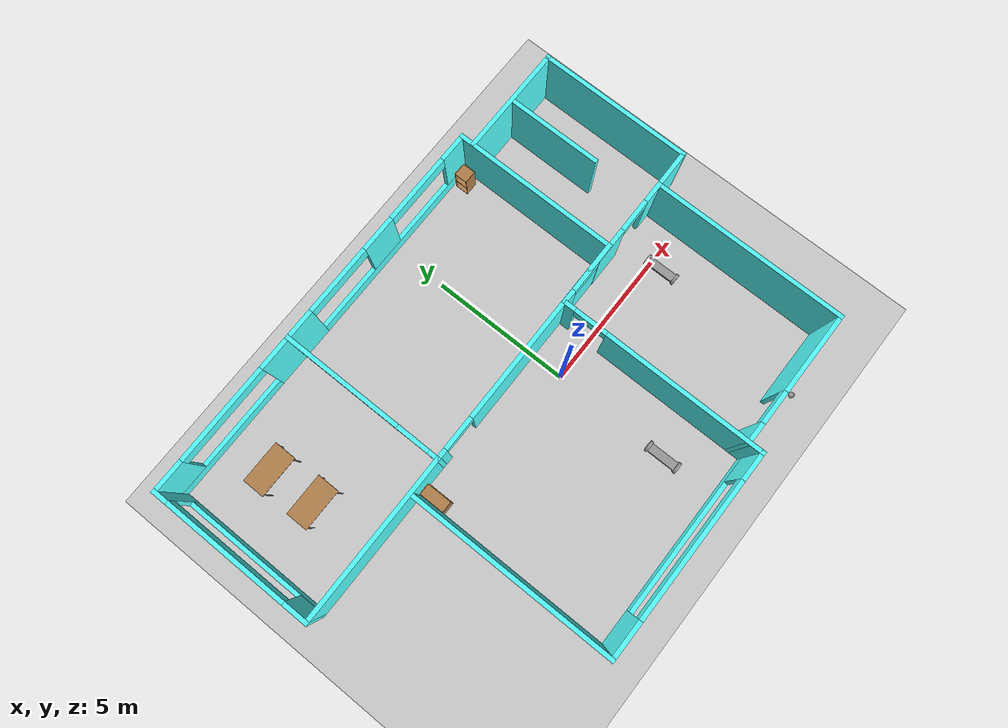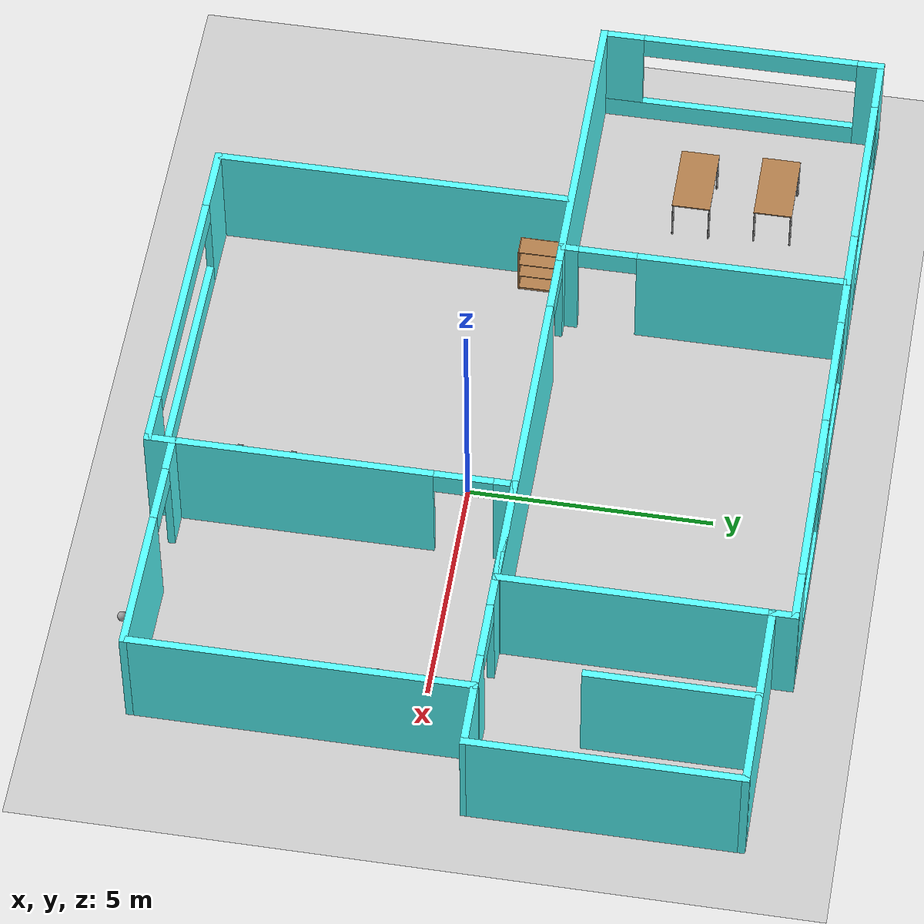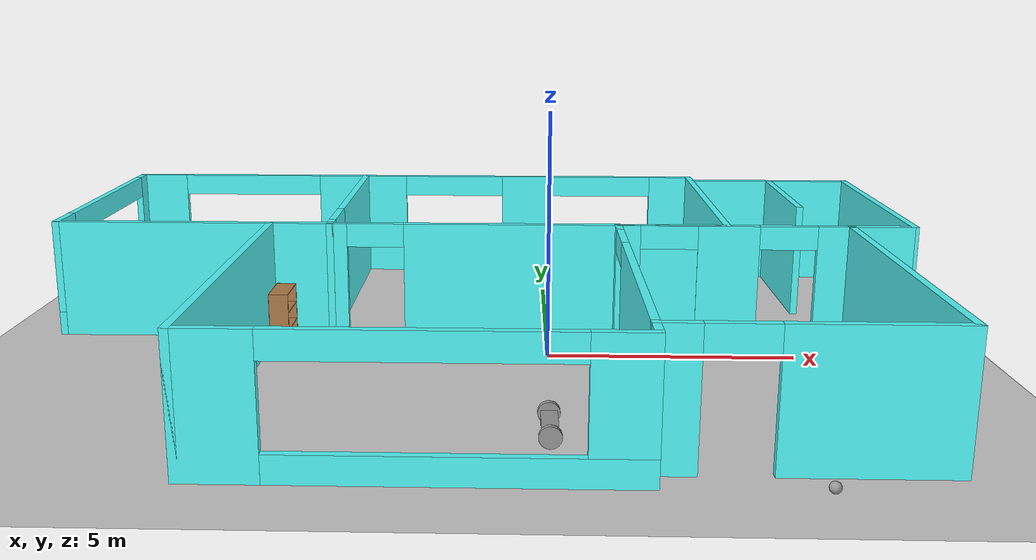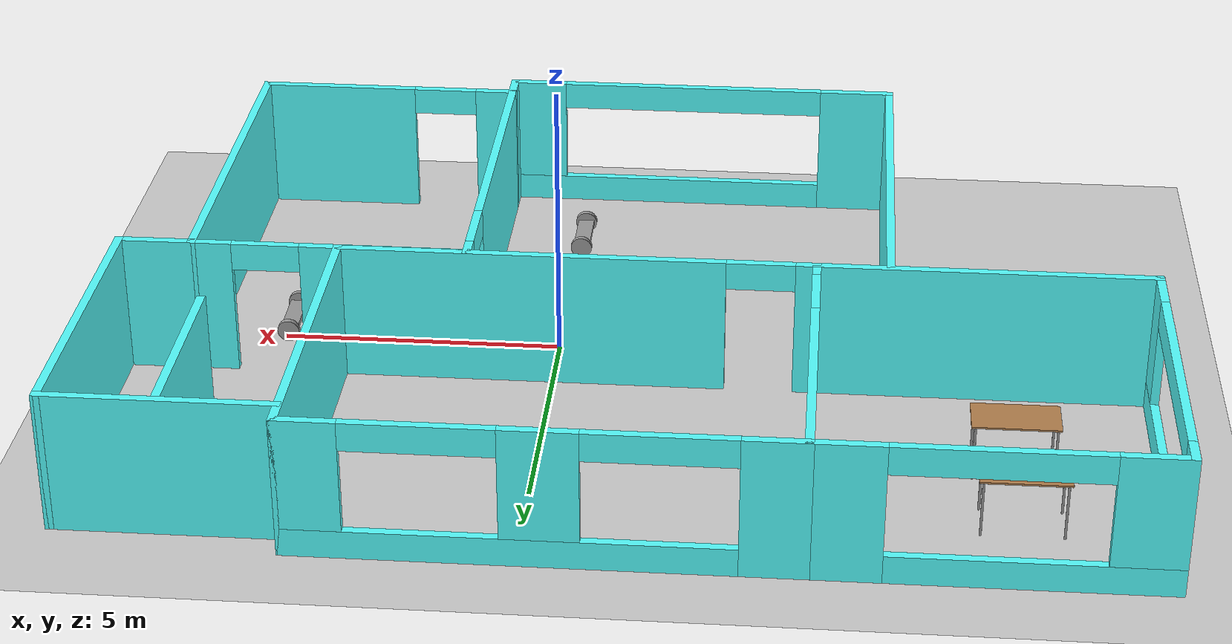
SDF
<sdf version="1.6">
 <world name="default">
  <plugin name="hello" filename="libhello.so"/>
  <light name="sun" type="directional">
   <pose>0 0 10 0 -0 0</pose>
   <diffuse>0.8 0.8 0.8 1</diffuse>
   <specular>0.2 0.2 0.2 1</specular>
   <attenuation>
    <range>1000</range>
    <constant>0.9</constant>
    <linear>0.01</linear>
    <quadratic>0.001</quadratic>
   </attenuation>
   <direction>-0.5 0.1 -0.9</direction>
  </light>
  <model name="ground_plane">
   <static>1</static>
   <link name="link">
    <collision name="collision">
     <geometry><plane><normal>0 0 1</normal><size>100 100</size></plane></geometry>
     <surface>
      <contact><collide_bitmask>65535</collide_bitmask></contact>
      <friction><ode><mu>100</mu><mu2>50</mu2></ode></friction>
     </surface>
    </collision>
    <visual name="visual">
     <cast_shadows>0</cast_shadows>
     <geometry><plane><normal>0 0 1</normal><size>100 100</size></plane></geometry>
     <material>
      <script><uri>file://media/materials/scripts/gazebo.material</uri><name>Gazebo/Grey</name></script>
     </material>
    </visual>
   </link>
  </model>
  <gravity>0 0 -9.8</gravity>
  <magnetic_field>6e-06 2.3e-05 -4.2e-05</magnetic_field>
  <atmosphere type="adiabatic"/>
  <physics name="default_physics" default="0" type="ode">
   <max_step_size>0.001</max_step_size>
   <real_time_factor>1</real_time_factor>
   <real_time_update_rate>1000</real_time_update_rate>
  </physics>
  <scene><ambient>0.4 0.4 0.4 1</ambient><background>0.7 0.7 0.7 1</background><shadows>1</shadows></scene>
  <spherical_coordinates>
   <surface_model>EARTH_WGS84</surface_model>
   <latitude_deg>0</latitude_deg>
   <longitude_deg>0</longitude_deg>
   <elevation>0</elevation>
   <heading_deg>0</heading_deg>
  </spherical_coordinates>
  <model name="robot">
   <link name="link_0">
    <inertial>
     <mass>1</mass>
     <inertia>
      <ixx>0.166667</ixx>
      <ixy>0</ixy>
      <ixz>0</ixz>
      <iyy>0.166667</iyy>
      <iyz>0</iyz>
      <izz>0.166667</izz>
     </inertia>
    </inertial>
    <visual name="visual">
     <geometry><box><size>0.3 1 0.1</size></box></geometry>
     <material>
      <lighting>1</lighting>
      <script><uri>file://media/materials/scripts/gazebo.material</uri><name>Gazebo/Grey</name></script>
      <shader type="pixel"><normal_map>__default__</normal_map></shader>
      <ambient>0.3 0.3 0.3 1</ambient>
      <diffuse>0.7 0.7 0.7 1</diffuse>
      <specular>0.01 0.01 0.01 1</specular>
      <emissive>0 0 0 1</emissive>
     </material>
    </visual>
    <collision name="collision">
     <geometry><box><size>0.3 1 0.1</size></box></geometry>
     <surface>
      <friction>
       <ode><mu>1</mu><mu2>1</mu2><fdir1>0 0 0</fdir1><slip1>0</slip1><slip2>0</slip2></ode>
       <torsional>
        <coefficient>1</coefficient>
        <patch_radius>0</patch_radius>
        <surface_radius>0</surface_radius>
        <use_patch_radius>1</use_patch_radius>
        <ode><slip>0</slip></ode>
       </torsional>
      </friction>
      <bounce><restitution_coefficient>0</restitution_coefficient><threshold>1e+06</threshold></bounce>
      <contact>
       <collide_without_contact>0</collide_without_contact>
       <collide_without_contact_bitmask>1</collide_without_contact_bitmask>
       <collide_bitmask>1</collide_bitmask>
       <ode>
        <soft_cfm>0</soft_cfm>
        <soft_erp>0.2</soft_erp>
        <kp>1e+13</kp>
        <kd>1</kd>
        <max_vel>0.01</max_vel>
        <min_depth>0</min_depth>
       </ode>
       <bullet>
        <split_impulse>1</split_impulse>
        <split_impulse_penetration_threshold>-0.01</split_impulse_penetration_threshold>
        <soft_cfm>0</soft_cfm>
        <soft_erp>0.2</soft_erp>
        <kp>1e+13</kp>
        <kd>1</kd>
       </bullet>
      </contact>
     </surface>
    </collision>
   </link>
   <link name="link_1">
    <pose>0 -0.550019 0 1.5707 -0 0</pose>
    <inertial>
     <mass>1</mass>
     <inertia><ixx>0.145833</ixx><ixy>0</ixy><ixz>0</ixz><iyy>0.145833</iyy><iyz>0</iyz><izz>0.125</izz></inertia>
    </inertial>
    <visual name="visual">
     <geometry><cylinder><radius>0.2</radius><length>0.1</length></cylinder></geometry>
     <material>
      <lighting>1</lighting>
      <script><uri>file://media/materials/scripts/gazebo.material</uri><name>Gazebo/Grey</name></script>
      <shader type="pixel"><normal_map>__default__</normal_map></shader>
      <ambient>0.3 0.3 0.3 1</ambient>
      <diffuse>0.7 0.7 0.7 1</diffuse>
      <specular>0.01 0.01 0.01 1</specular>
      <emissive>0 0 0 1</emissive>
     </material>
    </visual>
    <collision name="collision">
     <geometry><cylinder><radius>0.2</radius><length>0.1</length></cylinder></geometry>
     <surface>
      <friction>
       <ode><mu>1</mu><mu2>1</mu2><fdir1>0 0 0</fdir1><slip1>0</slip1><slip2>0</slip2></ode>
       <torsional>
        <coefficient>1</coefficient>
        <patch_radius>0</patch_radius>
        <surface_radius>0</surface_radius>
        <use_patch_radius>1</use_patch_radius>
        <ode><slip>0</slip></ode>
       </torsional>
      </friction>
      <bounce><restitution_coefficient>0</restitution_coefficient><threshold>1e+06</threshold></bounce>
      <contact>
       <collide_without_contact>0</collide_without_contact>
       <collide_without_contact_bitmask>1</collide_without_contact_bitmask>
       <collide_bitmask>1</collide_bitmask>
       <ode>
        <soft_cfm>0</soft_cfm>
        <soft_erp>0.2</soft_erp>
        <kp>1e+13</kp>
        <kd>1</kd>
        <max_vel>0.01</max_vel>
        <min_depth>0</min_depth>
       </ode>
       <bullet>
        <split_impulse>1</split_impulse>
        <split_impulse_penetration_threshold>-0.01</split_impulse_penetration_threshold>
        <soft_cfm>0</soft_cfm>
        <soft_erp>0.2</soft_erp>
        <kp>1e+13</kp>
        <kd>1</kd>
       </bullet>
      </contact>
     </surface>
    </collision>
   </link>
   <link name="link_1_clone">
    <pose>0 0.550019 0 1.5707 -0 0</pose>
    <inertial>
     <mass>1</mass>
     <inertia><ixx>0.145833</ixx><ixy>0</ixy><ixz>0</ixz><iyy>0.145833</iyy><iyz>0</iyz><izz>0.125</izz></inertia>
    </inertial>
    <visual name="visual">
     <geometry><cylinder><radius>0.2</radius><length>0.1</length></cylinder></geometry>
     <material>
      <lighting>1</lighting>
      <script><uri>file://media/materials/scripts/gazebo.material</uri><name>Gazebo/Grey</name></script>
      <shader type="pixel"><normal_map>__default__</normal_map></shader>
      <ambient>0.3 0.3 0.3 1</ambient>
      <diffuse>0.7 0.7 0.7 1</diffuse>
      <specular>0.01 0.01 0.01 1</specular>
      <emissive>0 0 0 1</emissive>
     </material>
    </visual>
    <collision name="collision">
     <geometry><cylinder><radius>0.2</radius><length>0.1</length></cylinder></geometry>
     <surface>
      <friction>
       <ode><mu>1</mu><mu2>1</mu2><fdir1>0 0 0</fdir1><slip1>0</slip1><slip2>0</slip2></ode>
       <torsional>
        <coefficient>1</coefficient>
        <patch_radius>0</patch_radius>
        <surface_radius>0</surface_radius>
        <use_patch_radius>1</use_patch_radius>
        <ode><slip>0</slip></ode>
       </torsional>
      </friction>
      <bounce><restitution_coefficient>0</restitution_coefficient><threshold>1e+06</threshold></bounce>
      <contact>
       <collide_without_contact>0</collide_without_contact>
       <collide_without_contact_bitmask>1</collide_without_contact_bitmask>
       <collide_bitmask>1</collide_bitmask>
       <ode>
        <soft_cfm>0</soft_cfm>
        <soft_erp>0.2</soft_erp>
        <kp>1e+13</kp>
        <kd>1</kd>
        <max_vel>0.01</max_vel>
        <min_depth>0</min_depth>
       </ode>
       <bullet>
        <split_impulse>1</split_impulse>
        <split_impulse_penetration_threshold>-0.01</split_impulse_penetration_threshold>
        <soft_cfm>0</soft_cfm>
        <soft_erp>0.2</soft_erp>
        <kp>1e+13</kp>
        <kd>1</kd>
       </bullet>
      </contact>
     </surface>
    </collision>
   </link>
   <joint name="link_0_JOINT_0" type="revolute">
    <parent>link_0</parent>
    <child>link_1</child>
    <axis>
     <xyz>0 0 1</xyz>
     <use_parent_model_frame>0</use_parent_model_frame>
     <limit>
      <lower>-1.79769e+308</lower>
      <upper>1.79769e+308</upper>
      <effort>-1</effort>
      <velocity>-1</velocity>
     </limit>
     <dynamics>
      <spring_reference>0</spring_reference>
      <spring_stiffness>0</spring_stiffness>
      <damping>0</damping>
     </dynamics>
    </axis>
    <physics>
     <ode><limit><cfm>0</cfm><erp>0.2</erp></limit><suspension><cfm>0</cfm><erp>0.2</erp></suspension></ode>
    </physics>
   </joint>
   <joint name="link_0_JOINT_1" type="revolute">
    <parent>link_0</parent>
    <child>link_1_clone</child>
    <axis>
     <xyz>0 0 1</xyz>
     <use_parent_model_frame>0</use_parent_model_frame>
     <limit>
      <lower>-1.79769e+308</lower>
      <upper>1.79769e+308</upper>
      <effort>-1</effort>
      <velocity>-1</velocity>
     </limit>
     <dynamics>
      <spring_reference>0</spring_reference>
      <spring_stiffness>0</spring_stiffness>
      <damping>0</damping>
     </dynamics>
    </axis>
    <physics>
     <ode><limit><cfm>0</cfm><erp>0.2</erp></limit><suspension><cfm>0</cfm><erp>0.2</erp></suspension></ode>
    </physics>
   </joint>
   <static>0</static>
   <pose>-0.059484 -4.16232 0.200005 0 -0 0</pose>
  </model>
  <model name="building">
   <pose>-1.41235 0.43218 0 0 -0 0</pose>
   <link name="Wall_1">
    <pose>-9.03865 3.68146 0 0 0 -1.5708</pose>
    <visual name="Wall_1_Visual_0">
     <pose>-2.71577 0 1.25 0 -0 0</pose>
     <geometry><box><size>0.568462 0.15 2.5</size></box></geometry>
     <material>
      <script><uri>file://media/materials/scripts/gazebo.material</uri><name>Gazebo/Grey</name></script>
      <ambient>0.333333 1 1 1</ambient>
     </material>
     <meta><layer>0</layer></meta>
    </visual>
    <collision name="Wall_1_Collision_0">
     <geometry><box><size>0.568462 0.15 2.5</size></box></geometry>
     <pose>-2.71577 0 1.25 0 -0 0</pose>
    </collision>
    <visual name="Wall_1_Visual_1">
     <pose>0.284231 0 0.25 0 -0 0</pose>
     <geometry><box><size>5.43154 0.15 0.5</size></box></geometry>
     <material>
      <script><uri>file://media/materials/scripts/gazebo.material</uri><name>Gazebo/Grey</name></script>
      <ambient>0.333333 1 1 1</ambient>
     </material>
     <meta><layer>0</layer></meta>
    </visual>
    <collision name="Wall_1_Collision_1">
     <geometry><box><size>5.43154 0.15 0.5</size></box></geometry>
     <pose>0.284231 0 0.25 0 -0 0</pose>
    </collision>
    <visual name="Wall_1_Visual_2">
     <pose>2.53423 0 1.5 0 -0 0</pose>
     <geometry><box><size>0.931538 0.15 2</size></box></geometry>
     <material>
      <script><uri>file://media/materials/scripts/gazebo.material</uri><name>Gazebo/Grey</name></script>
      <ambient>0.333333 1 1 1</ambient>
     </material>
     <meta><layer>0</layer></meta>
    </visual>
    <collision name="Wall_1_Collision_2">
     <geometry><box><size>0.931538 0.15 2</size></box></geometry>
     <pose>2.53423 0 1.5 0 -0 0</pose>
    </collision>
    <visual name="Wall_1_Visual_3">
     <pose>-0.181538 0 2.25 0 -0 0</pose>
     <geometry><box><size>4.5 0.15 0.5</size></box></geometry>
     <material>
      <script><uri>file://media/materials/scripts/gazebo.material</uri><name>Gazebo/Grey</name></script>
      <ambient>0.333333 1 1 1</ambient>
     </material>
     <meta><layer>0</layer></meta>
    </visual>
    <collision name="Wall_1_Collision_3">
     <geometry><box><size>4.5 0.15 0.5</size></box></geometry>
     <pose>-0.181538 0 2.25 0 -0 0</pose>
    </collision>
   </link>
   <link name="Wall_12">
    <collision name="Wall_12_Collision">
     <geometry><box><size>7.5 0.15 2.5</size></box></geometry>
     <pose>0 0 1.25 0 -0 0</pose>
    </collision>
    <visual name="Wall_12_Visual">
     <pose>0 0 1.25 0 -0 0</pose>
     <geometry><box><size>7.5 0.15 2.5</size></box></geometry>
     <material>
      <script><uri>file://media/materials/scripts/gazebo.material</uri><name>Gazebo/Grey</name></script>
      <ambient>0.333333 1 1 1</ambient>
     </material>
     <meta><layer>0</layer></meta>
    </visual>
    <pose>-4.45822 -2.93146 0 0 0 -1.5708</pose>
   </link>
   <link name="Wall_14">
    <pose>-0.783219 -6.60646 0 0 -0 0</pose>
    <visual name="Wall_14_Visual_0">
     <pose>-3.04444 0 1.25 0 -0 0</pose>
     <geometry><box><size>1.41111 0.15 2.5</size></box></geometry>
     <material>
      <script><uri>file://media/materials/scripts/gazebo.material</uri><name>Gazebo/Grey</name></script>
      <ambient>0.333333 1 1 1</ambient>
     </material>
     <meta><layer>0</layer></meta>
    </visual>
    <collision name="Wall_14_Collision_0">
     <geometry><box><size>1.41111 0.15 2.5</size></box></geometry>
     <pose>-3.04444 0 1.25 0 -0 0</pose>
    </collision>
    <visual name="Wall_14_Visual_1">
     <pose>0.705557 0 0.25 0 -0 0</pose>
     <geometry><box><size>6.08889 0.15 0.5</size></box></geometry>
     <material>
      <script><uri>file://media/materials/scripts/gazebo.material</uri><name>Gazebo/Grey</name></script>
      <ambient>0.333333 1 1 1</ambient>
     </material>
     <meta><layer>0</layer></meta>
    </visual>
    <collision name="Wall_14_Collision_1">
     <geometry><box><size>6.08889 0.15 0.5</size></box></geometry>
     <pose>0.705557 0 0.25 0 -0 0</pose>
    </collision>
    <visual name="Wall_14_Visual_2">
     <pose>3.20556 0 1.5 0 -0 0</pose>
     <geometry><box><size>1.08889 0.15 2</size></box></geometry>
     <material>
      <script><uri>file://media/materials/scripts/gazebo.material</uri><name>Gazebo/Grey</name></script>
      <ambient>0.333333 1 1 1</ambient>
     </material>
     <meta><layer>0</layer></meta>
    </visual>
    <collision name="Wall_14_Collision_2">
     <geometry><box><size>1.08889 0.15 2</size></box></geometry>
     <pose>3.20556 0 1.5 0 -0 0</pose>
    </collision>
    <visual name="Wall_14_Visual_3">
     <pose>0.161115 0 2.25 0 -0 0</pose>
     <geometry><box><size>5 0.15 0.5</size></box></geometry>
     <material>
      <script><uri>file://media/materials/scripts/gazebo.material</uri><name>Gazebo/Grey</name></script>
      <ambient>0.333333 1 1 1</ambient>
     </material>
     <meta><layer>0</layer></meta>
    </visual>
    <collision name="Wall_14_Collision_3">
     <geometry><box><size>5 0.15 0.5</size></box></geometry>
     <pose>0.161115 0 2.25 0 -0 0</pose>
    </collision>
   </link>
   <link name="Wall_15">
    <pose>2.89178 -2.93146 0 0 -0 1.5708</pose>
    <visual name="Wall_15_Visual_0">
     <pose>-0.841152 0 1.25 0 -0 0</pose>
     <geometry><box><size>5.81769 0.15 2.5</size></box></geometry>
     <material>
      <script><uri>file://media/materials/scripts/gazebo.material</uri><name>Gazebo/Grey</name></script>
      <ambient>0.333333 1 1 1</ambient>
     </material>
     <meta><layer>0</layer></meta>
    </visual>
    <collision name="Wall_15_Collision_0">
     <geometry><box><size>5.81769 0.15 2.5</size></box></geometry>
     <pose>-0.841152 0 1.25 0 -0 0</pose>
    </collision>
    <visual name="Wall_15_Visual_1">
     <pose>3.50885 0 1.25 0 -0 0</pose>
     <geometry><box><size>0.482305 0.15 2.5</size></box></geometry>
     <material>
      <script><uri>file://media/materials/scripts/gazebo.material</uri><name>Gazebo/Grey</name></script>
      <ambient>0.333333 1 1 1</ambient>
     </material>
     <meta><layer>0</layer></meta>
    </visual>
    <collision name="Wall_15_Collision_1">
     <geometry><box><size>0.482305 0.15 2.5</size></box></geometry>
     <pose>3.50885 0 1.25 0 -0 0</pose>
    </collision>
    <visual name="Wall_15_Visual_2">
     <pose>2.6677 0 2.25 0 -0 0</pose>
     <geometry><box><size>1.2 0.15 0.5</size></box></geometry>
     <material>
      <script><uri>file://media/materials/scripts/gazebo.material</uri><name>Gazebo/Grey</name></script>
      <ambient>0.333333 1 1 1</ambient>
     </material>
     <meta><layer>0</layer></meta>
    </visual>
    <collision name="Wall_15_Collision_2">
     <geometry><box><size>1.2 0.15 0.5</size></box></geometry>
     <pose>2.6677 0 2.25 0 -0 0</pose>
    </collision>
   </link>
   <link name="Wall_17">
    <pose>5.31678 0.743537 0 0 -0 0</pose>
    <visual name="Wall_17_Visual_0">
     <pose>-2.23135 0 1.25 0 -0 0</pose>
     <geometry><box><size>0.537309 0.15 2.5</size></box></geometry>
     <material>
      <script><uri>file://media/materials/scripts/gazebo.material</uri><name>Gazebo/Grey</name></script>
      <ambient>0.333333 1 1 1</ambient>
     </material>
     <meta><layer>0</layer></meta>
    </visual>
    <collision name="Wall_17_Collision_0">
     <geometry><box><size>0.537309 0.15 2.5</size></box></geometry>
     <pose>-2.23135 0 1.25 0 -0 0</pose>
    </collision>
    <visual name="Wall_17_Visual_1">
     <pose>-0.120616 0 1.25 0 -0 0</pose>
     <geometry><box><size>1.28415 0.15 2.5</size></box></geometry>
     <material>
      <script><uri>file://media/materials/scripts/gazebo.material</uri><name>Gazebo/Grey</name></script>
      <ambient>0.333333 1 1 1</ambient>
     </material>
     <meta><layer>0</layer></meta>
    </visual>
    <collision name="Wall_17_Collision_1">
     <geometry><box><size>1.28415 0.15 2.5</size></box></geometry>
     <pose>-0.120616 0 1.25 0 -0 0</pose>
    </collision>
    <visual name="Wall_17_Visual_2">
     <pose>2.11073 0 1.25 0 -0 0</pose>
     <geometry><box><size>0.778542 0.15 2.5</size></box></geometry>
     <material>
      <script><uri>file://media/materials/scripts/gazebo.material</uri><name>Gazebo/Grey</name></script>
      <ambient>0.333333 1 1 1</ambient>
     </material>
     <meta><layer>0</layer></meta>
    </visual>
    <collision name="Wall_17_Collision_2">
     <geometry><box><size>0.778542 0.15 2.5</size></box></geometry>
     <pose>2.11073 0 1.25 0 -0 0</pose>
    </collision>
    <visual name="Wall_17_Visual_3">
     <pose>-1.36269 0 2.25 0 -0 0</pose>
     <geometry><box><size>1.2 0.15 0.5</size></box></geometry>
     <material>
      <script><uri>file://media/materials/scripts/gazebo.material</uri><name>Gazebo/Grey</name></script>
      <ambient>0.333333 1 1 1</ambient>
     </material>
     <meta><layer>0</layer></meta>
    </visual>
    <collision name="Wall_17_Collision_3">
     <geometry><box><size>1.2 0.15 0.5</size></box></geometry>
     <pose>-1.36269 0 2.25 0 -0 0</pose>
    </collision>
    <visual name="Wall_17_Visual_4">
     <pose>1.12146 0 2.25 0 -0 0</pose>
     <geometry><box><size>1.2 0.15 0.5</size></box></geometry>
     <material>
      <script><uri>file://media/materials/scripts/gazebo.material</uri><name>Gazebo/Grey</name></script>
      <ambient>0.333333 1 1 1</ambient>
     </material>
     <meta><layer>0</layer></meta>
    </visual>
    <collision name="Wall_17_Collision_4">
     <geometry><box><size>1.2 0.15 0.5</size></box></geometry>
     <pose>1.12146 0 2.25 0 -0 0</pose>
    </collision>
   </link>
   <link name="Wall_18">
    <collision name="Wall_18_Collision">
     <geometry><box><size>7 0.15 2.5</size></box></geometry>
     <pose>0 0 1.25 0 -0 0</pose>
    </collision>
    <visual name="Wall_18_Visual">
     <pose>0 0 1.25 0 -0 0</pose>
     <geometry><box><size>7 0.15 2.5</size></box></geometry>
     <material>
      <script><uri>file://media/materials/scripts/gazebo.material</uri><name>Gazebo/Grey</name></script>
      <ambient>0.333333 1 1 1</ambient>
     </material>
     <meta><layer>0</layer></meta>
    </visual>
    <pose>7.74178 -2.68146 0 0 0 -1.5708</pose>
   </link>
   <link name="Wall_19">
    <pose>5.31678 -6.10646 0 0 -0 3.14159</pose>
    <visual name="Wall_19_Visual_0">
     <pose>-0.997186 0 1.25 0 -0 0</pose>
     <geometry><box><size>3.00563 0.15 2.5</size></box></geometry>
     <material>
      <script><uri>file://media/materials/scripts/gazebo.material</uri><name>Gazebo/Grey</name></script>
      <ambient>0.333333 1 1 1</ambient>
     </material>
     <meta><layer>0</layer></meta>
    </visual>
    <collision name="Wall_19_Collision_0">
     <geometry><box><size>3.00563 0.15 2.5</size></box></geometry>
     <pose>-0.997186 0 1.25 0 -0 0</pose>
    </collision>
    <visual name="Wall_19_Visual_1">
     <pose>2.10281 0 1.25 0 -0 0</pose>
     <geometry><box><size>0.794371 0.15 2.5</size></box></geometry>
     <material>
      <script><uri>file://media/materials/scripts/gazebo.material</uri><name>Gazebo/Grey</name></script>
      <ambient>0.333333 1 1 1</ambient>
     </material>
     <meta><layer>0</layer></meta>
    </visual>
    <collision name="Wall_19_Collision_1">
     <geometry><box><size>0.794371 0.15 2.5</size></box></geometry>
     <pose>2.10281 0 1.25 0 -0 0</pose>
    </collision>
    <visual name="Wall_19_Visual_2">
     <pose>1.10563 0 2.25 0 -0 0</pose>
     <geometry><box><size>1.2 0.15 0.5</size></box></geometry>
     <material>
      <script><uri>file://media/materials/scripts/gazebo.material</uri><name>Gazebo/Grey</name></script>
      <ambient>0.333333 1 1 1</ambient>
     </material>
     <meta><layer>0</layer></meta>
    </visual>
    <collision name="Wall_19_Collision_2">
     <geometry><box><size>1.2 0.15 0.5</size></box></geometry>
     <pose>1.10563 0 2.25 0 -0 0</pose>
    </collision>
   </link>
   <link name="Wall_2">
    <collision name="Wall_2_Collision">
     <geometry><box><size>6 0.15 2.5</size></box></geometry>
     <pose>0 0 1.25 0 -0 0</pose>
    </collision>
    <visual name="Wall_2_Visual">
     <pose>0 0 1.25 0 -0 0</pose>
     <geometry><box><size>6 0.15 2.5</size></box></geometry>
     <material>
      <script><uri>file://media/materials/scripts/gazebo.material</uri><name>Gazebo/Grey</name></script>
      <ambient>0.333333 1 1 1</ambient>
     </material>
     <meta><layer>0</layer></meta>
    </visual>
    <pose>-6.11365 0.756463 0 0 -0 0</pose>
   </link>
   <link name="Wall_3">
    <pose>-3.18865 3.68146 0 0 -0 1.5708</pose>
    <visual name="Wall_3_Visual_0">
     <pose>-2.78821 0 1.25 0 -0 0</pose>
     <geometry><box><size>0.423576 0.15 2.5</size></box></geometry>
     <material>
      <script><uri>file://media/materials/scripts/gazebo.material</uri><name>Gazebo/Grey</name></script>
      <ambient>0.333333 1 1 1</ambient>
     </material>
     <meta><layer>0</layer></meta>
    </visual>
    <collision name="Wall_3_Collision_0">
     <geometry><box><size>0.423576 0.15 2.5</size></box></geometry>
     <pose>-2.78821 0 1.25 0 -0 0</pose>
    </collision>
    <visual name="Wall_3_Visual_1">
     <pose>0.811788 0 1.25 0 -0 0</pose>
     <geometry><box><size>4.37642 0.15 2.5</size></box></geometry>
     <material>
      <script><uri>file://media/materials/scripts/gazebo.material</uri><name>Gazebo/Grey</name></script>
      <ambient>0.333333 1 1 1</ambient>
     </material>
     <meta><layer>0</layer></meta>
    </visual>
    <collision name="Wall_3_Collision_1">
     <geometry><box><size>4.37642 0.15 2.5</size></box></geometry>
     <pose>0.811788 0 1.25 0 -0 0</pose>
    </collision>
    <visual name="Wall_3_Visual_2">
     <pose>-1.97642 0 2.25 0 -0 0</pose>
     <geometry><box><size>1.2 0.15 0.5</size></box></geometry>
     <material>
      <script><uri>file://media/materials/scripts/gazebo.material</uri><name>Gazebo/Grey</name></script>
      <ambient>0.333333 1 1 1</ambient>
     </material>
     <meta><layer>0</layer></meta>
    </visual>
    <collision name="Wall_3_Collision_2">
     <geometry><box><size>1.2 0.15 0.5</size></box></geometry>
     <pose>-1.97642 0 2.25 0 -0 0</pose>
    </collision>
   </link>
   <link name="Wall_36">
    <collision name="Wall_36_Collision">
     <geometry><box><size>4 0.15 2.5</size></box></geometry>
     <pose>0 0 1.25 0 -0 0</pose>
    </collision>
    <visual name="Wall_36_Visual">
     <pose>0 0 1.25 0 -0 0</pose>
     <geometry><box><size>4 0.15 2.5</size></box></geometry>
     <material>
      <script><uri>file://media/materials/scripts/gazebo.material</uri><name>Gazebo/Grey</name></script>
      <ambient>0.333333 1 1 1</ambient>
     </material>
     <meta><layer>0</layer></meta>
    </visual>
    <pose>7.11291 6.15942 0 0 -0 6.1e-05</pose>
   </link>
   <link name="Wall_37">
    <collision name="Wall_37_Collision">
     <geometry><box><size>5.556 0.15 2.5</size></box></geometry>
     <pose>0 0 1.25 0 -0 0</pose>
    </collision>
    <visual name="Wall_37_Visual">
     <pose>0 0 1.25 0 -0 0</pose>
     <geometry><box><size>5.556 0.15 2.5</size></box></geometry>
     <material>
      <script><uri>file://media/materials/scripts/gazebo.material</uri><name>Gazebo/Grey</name></script>
      <ambient>0.333333 1 1 1</ambient>
     </material>
     <meta><layer>0</layer></meta>
    </visual>
    <pose>9.03778 3.45654 0 0 0 -1.5708</pose>
   </link>
   <link name="Wall_38">
    <collision name="Wall_38_Collision">
     <geometry><box><size>1.44662 0.15 2.5</size></box></geometry>
     <pose>0 0 1.25 0 -0 0</pose>
    </collision>
    <visual name="Wall_38_Visual">
     <pose>0 0 1.25 0 -0 0</pose>
     <geometry><box><size>1.44662 0.15 2.5</size></box></geometry>
     <material>
      <script><uri>file://media/materials/scripts/gazebo.material</uri><name>Gazebo/Grey</name></script>
      <ambient>0.333333 1 1 1</ambient>
     </material>
     <meta><layer>0</layer></meta>
    </visual>
    <pose>8.38978 0.748538 0 0 0 -3.13388</pose>
   </link>
   <link name="Wall_4">
    <pose>-6.11365 6.60646 0 0 -0 3.14159</pose>
    <visual name="Wall_4_Visual_0">
     <pose>-2.35852 0 1.25 0 -0 0</pose>
     <geometry><box><size>1.28296 0.15 2.5</size></box></geometry>
     <material>
      <script><uri>file://media/materials/scripts/gazebo.material</uri><name>Gazebo/Grey</name></script>
      <ambient>0.333333 1 1 1</ambient>
     </material>
     <meta><layer>0</layer></meta>
    </visual>
    <collision name="Wall_4_Collision_0">
     <geometry><box><size>1.28296 0.15 2.5</size></box></geometry>
     <pose>-2.35852 0 1.25 0 -0 0</pose>
    </collision>
    <visual name="Wall_4_Visual_1">
     <pose>0.641479 0 0.25 0 -0 0</pose>
     <geometry><box><size>4.71704 0.15 0.5</size></box></geometry>
     <material>
      <script><uri>file://media/materials/scripts/gazebo.material</uri><name>Gazebo/Grey</name></script>
      <ambient>0.333333 1 1 1</ambient>
     </material>
     <meta><layer>0</layer></meta>
    </visual>
    <collision name="Wall_4_Collision_1">
     <geometry><box><size>4.71704 0.15 0.5</size></box></geometry>
     <pose>0.641479 0 0.25 0 -0 0</pose>
    </collision>
    <visual name="Wall_4_Visual_2">
     <pose>2.39148 0 1.5 0 -0 0</pose>
     <geometry><box><size>1.21704 0.15 2</size></box></geometry>
     <material>
      <script><uri>file://media/materials/scripts/gazebo.material</uri><name>Gazebo/Grey</name></script>
      <ambient>0.333333 1 1 1</ambient>
     </material>
     <meta><layer>0</layer></meta>
    </visual>
    <collision name="Wall_4_Collision_2">
     <geometry><box><size>1.21704 0.15 2</size></box></geometry>
     <pose>2.39148 0 1.5 0 -0 0</pose>
    </collision>
    <visual name="Wall_4_Visual_3">
     <pose>0.032959 0 2.25 0 -0 0</pose>
     <geometry><box><size>3.5 0.15 0.5</size></box></geometry>
     <material>
      <script><uri>file://media/materials/scripts/gazebo.material</uri><name>Gazebo/Grey</name></script>
      <ambient>0.333333 1 1 1</ambient>
     </material>
     <meta><layer>0</layer></meta>
    </visual>
    <collision name="Wall_4_Collision_3">
     <geometry><box><size>3.5 0.15 0.5</size></box></geometry>
     <pose>0.032959 0 2.25 0 -0 0</pose>
    </collision>
   </link>
   <link name="Wall_40">
    <collision name="Wall_40_Collision">
     <geometry><box><size>3.5 0.15 2.5</size></box></geometry>
     <pose>0 0 1.25 0 -0 0</pose>
    </collision>
    <visual name="Wall_40_Visual">
     <pose>0 0 1.25 0 -0 0</pose>
     <geometry><box><size>3.5 0.15 2.5</size></box></geometry>
     <material>
      <script><uri>file://media/materials/scripts/gazebo.material</uri><name>Gazebo/Grey</name></script>
      <ambient>0.333333 1 1 1</ambient>
     </material>
     <meta><layer>0</layer></meta>
    </visual>
    <pose>7.12985 4.4843 0 0 0 -1.5708</pose>
   </link>
   <link name="Wall_6">
    <pose>0.986353 6.60646 0 0 -0 0</pose>
    <visual name="Wall_6_Visual_0">
     <pose>-3.68572 0 1.25 0 -0 0</pose>
     <geometry><box><size>1.12856 0.15 2.5</size></box></geometry>
     <material>
      <script><uri>file://media/materials/scripts/gazebo.material</uri><name>Gazebo/Grey</name></script>
      <ambient>0.333333 1 1 1</ambient>
     </material>
     <meta><layer>0</layer></meta>
    </visual>
    <collision name="Wall_6_Collision_0">
     <geometry><box><size>1.12856 0.15 2.5</size></box></geometry>
     <pose>-3.68572 0 1.25 0 -0 0</pose>
    </collision>
    <visual name="Wall_6_Visual_1">
     <pose>0.56428 0 0.25 0 -0 0</pose>
     <geometry><box><size>7.37144 0.15 0.5</size></box></geometry>
     <material>
      <script><uri>file://media/materials/scripts/gazebo.material</uri><name>Gazebo/Grey</name></script>
      <ambient>0.333333 1 1 1</ambient>
     </material>
     <meta><layer>0</layer></meta>
    </visual>
    <collision name="Wall_6_Collision_1">
     <geometry><box><size>7.37144 0.15 0.5</size></box></geometry>
     <pose>0.56428 0 0.25 0 -0 0</pose>
    </collision>
    <visual name="Wall_6_Visual_2">
     <pose>0.025155 0 1.5 0 -0 0</pose>
     <geometry><box><size>1.29319 0.15 2</size></box></geometry>
     <material>
      <script><uri>file://media/materials/scripts/gazebo.material</uri><name>Gazebo/Grey</name></script>
      <ambient>0.333333 1 1 1</ambient>
     </material>
     <meta><layer>0</layer></meta>
    </visual>
    <collision name="Wall_6_Collision_2">
     <geometry><box><size>1.29319 0.15 2</size></box></geometry>
     <pose>0.025155 0 1.5 0 -0 0</pose>
    </collision>
    <visual name="Wall_6_Visual_3">
     <pose>3.71088 0 1.5 0 -0 0</pose>
     <geometry><box><size>1.07825 0.15 2</size></box></geometry>
     <material>
      <script><uri>file://media/materials/scripts/gazebo.material</uri><name>Gazebo/Grey</name></script>
      <ambient>0.333333 1 1 1</ambient>
     </material>
     <meta><layer>0</layer></meta>
    </visual>
    <collision name="Wall_6_Collision_3">
     <geometry><box><size>1.07825 0.15 2</size></box></geometry>
     <pose>3.71088 0 1.5 0 -0 0</pose>
    </collision>
    <visual name="Wall_6_Visual_4">
     <pose>-1.87144 0 2.25 0 -0 0</pose>
     <geometry><box><size>2.5 0.15 0.5</size></box></geometry>
     <material>
      <script><uri>file://media/materials/scripts/gazebo.material</uri><name>Gazebo/Grey</name></script>
      <ambient>0.333333 1 1 1</ambient>
     </material>
     <meta><layer>0</layer></meta>
    </visual>
    <collision name="Wall_6_Collision_4">
     <geometry><box><size>2.5 0.15 0.5</size></box></geometry>
     <pose>-1.87144 0 2.25 0 -0 0</pose>
    </collision>
    <visual name="Wall_6_Visual_5">
     <pose>1.92175 0 2.25 0 -0 0</pose>
     <geometry><box><size>2.5 0.15 0.5</size></box></geometry>
     <material>
      <script><uri>file://media/materials/scripts/gazebo.material</uri><name>Gazebo/Grey</name></script>
      <ambient>0.333333 1 1 1</ambient>
     </material>
     <meta><layer>0</layer></meta>
    </visual>
    <collision name="Wall_6_Collision_5">
     <geometry><box><size>2.5 0.15 0.5</size></box></geometry>
     <pose>1.92175 0 2.25 0 -0 0</pose>
    </collision>
   </link>
   <link name="Wall_7">
    <collision name="Wall_7_Collision">
     <geometry><box><size>6 0.15 2.5</size></box></geometry>
     <pose>0 0 1.25 0 -0 0</pose>
    </collision>
    <visual name="Wall_7_Visual">
     <pose>0 0 1.25 0 -0 0</pose>
     <geometry><box><size>6 0.15 2.5</size></box></geometry>
     <material>
      <script><uri>file://media/materials/scripts/gazebo.material</uri><name>Gazebo/Grey</name></script>
      <ambient>0.333333 1 1 1</ambient>
     </material>
     <meta><layer>0</layer></meta>
    </visual>
    <pose>5.16135 3.68146 0 0 0 -1.5708</pose>
   </link>
   <link name="Wall_8">
    <pose>0.986353 0.756463 0 0 -0 3.14159</pose>
    <visual name="Wall_8_Visual_0">
     <pose>-0.818423 0 1.25 0 -0 0</pose>
     <geometry><box><size>6.86315 0.15 2.5</size></box></geometry>
     <material>
      <script><uri>file://media/materials/scripts/gazebo.material</uri><name>Gazebo/Grey</name></script>
      <ambient>0.333333 1 1 1</ambient>
     </material>
     <meta><layer>0</layer></meta>
    </visual>
    <collision name="Wall_8_Collision_0">
     <geometry><box><size>6.86315 0.15 2.5</size></box></geometry>
     <pose>-0.818423 0 1.25 0 -0 0</pose>
    </collision>
    <visual name="Wall_8_Visual_1">
     <pose>4.03158 0 1.25 0 -0 0</pose>
     <geometry><box><size>0.436846 0.15 2.5</size></box></geometry>
     <material>
      <script><uri>file://media/materials/scripts/gazebo.material</uri><name>Gazebo/Grey</name></script>
      <ambient>0.333333 1 1 1</ambient>
     </material>
     <meta><layer>0</layer></meta>
    </visual>
    <collision name="Wall_8_Collision_1">
     <geometry><box><size>0.436846 0.15 2.5</size></box></geometry>
     <pose>4.03158 0 1.25 0 -0 0</pose>
    </collision>
    <visual name="Wall_8_Visual_2">
     <pose>3.21315 0 2.25 0 -0 0</pose>
     <geometry><box><size>1.2 0.15 0.5</size></box></geometry>
     <material>
      <script><uri>file://media/materials/scripts/gazebo.material</uri><name>Gazebo/Grey</name></script>
      <ambient>0.333333 1 1 1</ambient>
     </material>
     <meta><layer>0</layer></meta>
    </visual>
    <collision name="Wall_8_Collision_2">
     <geometry><box><size>1.2 0.15 0.5</size></box></geometry>
     <pose>3.21315 0 2.25 0 -0 0</pose>
    </collision>
   </link>
   <static>1</static>
  </model>
  <model name="bookshelf">
   <static>1</static>
   <link name="link">
    <inertial><mass>1</mass></inertial>
    <collision name="back">
     <pose>0 0.005 0.6 0 -0 0</pose>
     <geometry><box><size>0.9 0.01 1.2</size></box></geometry>
    </collision>
    <visual name="visual1">
     <pose>0 0.005 0.6 0 -0 0</pose>
     <geometry><box><size>0.9 0.01 1.2</size></box></geometry>
     <material>
      <script><uri>file://media/materials/scripts/gazebo.material</uri><name>Gazebo/Wood</name></script>
     </material>
    </visual>
    <collision name="left_side">
     <pose>0.45 -0.195 0.6 0 -0 0</pose>
     <geometry><box><size>0.02 0.4 1.2</size></box></geometry>
    </collision>
    <visual name="visual2">
     <pose>0.45 -0.195 0.6 0 -0 0</pose>
     <geometry><box><size>0.02 0.4 1.2</size></box></geometry>
     <material>
      <script><uri>file://media/materials/scripts/gazebo.material</uri><name>Gazebo/Wood</name></script>
     </material>
    </visual>
    <collision name="right_side">
     <pose>-0.45 -0.195 0.6 0 -0 0</pose>
     <geometry><box><size>0.02 0.4 1.2</size></box></geometry>
    </collision>
    <visual name="visual3">
     <pose>-0.45 -0.195 0.6 0 -0 0</pose>
     <geometry><box><size>0.02 0.4 1.2</size></box></geometry>
     <material>
      <script><uri>file://media/materials/scripts/gazebo.material</uri><name>Gazebo/Wood</name></script>
     </material>
    </visual>
    <collision name="bottom">
     <pose>0 -0.195 0.03 0 -0 0</pose>
     <geometry><box><size>0.88 0.4 0.06</size></box></geometry>
    </collision>
    <visual name="visual4">
     <pose>0 -0.195 0.03 0 -0 0</pose>
     <geometry><box><size>0.88 0.4 0.06</size></box></geometry>
     <material>
      <script><uri>file://media/materials/scripts/gazebo.material</uri><name>Gazebo/Wood</name></script>
     </material>
    </visual>
    <collision name="top">
     <pose>0 -0.195 1.19 0 -0 0</pose>
     <geometry><box><size>0.88 0.4 0.02</size></box></geometry>
    </collision>
    <visual name="visual5">
     <pose>0 -0.195 1.19 0 -0 0</pose>
     <geometry><box><size>0.88 0.4 0.02</size></box></geometry>
     <material>
      <script><uri>file://media/materials/scripts/gazebo.material</uri><name>Gazebo/Wood</name></script>
     </material>
    </visual>
    <collision name="low_shelf">
     <pose>0 -0.195 0.43 0 -0 0</pose>
     <geometry><box><size>0.88 0.4 0.02</size></box></geometry>
    </collision>
    <visual name="visual6">
     <pose>0 -0.195 0.43 0 -0 0</pose>
     <geometry><box><size>0.88 0.4 0.02</size></box></geometry>
     <material>
      <script><uri>file://media/materials/scripts/gazebo.material</uri><name>Gazebo/Wood</name></script>
     </material>
    </visual>
    <collision name="high_shelf">
     <pose>0 -0.195 0.8 0 -0 0</pose>
     <geometry><box><size>0.88 0.4 0.02</size></box></geometry>
    </collision>
    <visual name="visual7">
     <pose>0 -0.195 0.8 0 -0 0</pose>
     <geometry><box><size>0.88 0.4 0.02</size></box></geometry>
     <material>
      <script><uri>file://media/materials/scripts/gazebo.material</uri><name>Gazebo/Wood</name></script>
     </material>
    </visual>
   </link>
   <pose>-5.74722 0.627385 0 0 -0 1.57361</pose>
  </model>
  <model name="table">
   <static>1</static>
   <link name="link">
    <collision name="surface">
     <pose>0 0 1 0 -0 0</pose>
     <geometry><box><size>1.5 0.8 0.03</size></box></geometry>
     <surface><friction><ode><mu>0.6</mu><mu2>0.6</mu2></ode></friction></surface>
    </collision>
    <visual name="visual1">
     <pose>0 0 1 0 -0 0</pose>
     <geometry><box><size>1.5 0.8 0.03</size></box></geometry>
     <material>
      <script><uri>file://media/materials/scripts/gazebo.material</uri><name>Gazebo/Wood</name></script>
     </material>
    </visual>
    <collision name="front_left_leg">
     <pose>0.68 0.38 0.5 0 -0 0</pose>
     <geometry><cylinder><radius>0.02</radius><length>1</length></cylinder></geometry>
    </collision>
    <visual name="front_left_leg">
     <pose>0.68 0.38 0.5 0 -0 0</pose>
     <geometry><cylinder><radius>0.02</radius><length>1</length></cylinder></geometry>
     <material>
      <script><uri>file://media/materials/scripts/gazebo.material</uri><name>Gazebo/Grey</name></script>
     </material>
    </visual>
    <collision name="front_right_leg">
     <pose>0.68 -0.38 0.5 0 -0 0</pose>
     <geometry><cylinder><radius>0.02</radius><length>1</length></cylinder></geometry>
    </collision>
    <visual name="front_right_leg">
     <pose>0.68 -0.38 0.5 0 -0 0</pose>
     <geometry><cylinder><radius>0.02</radius><length>1</length></cylinder></geometry>
     <material>
      <script><uri>file://media/materials/scripts/gazebo.material</uri><name>Gazebo/Grey</name></script>
     </material>
    </visual>
    <collision name="back_right_leg">
     <pose>-0.68 -0.38 0.5 0 -0 0</pose>
     <geometry><cylinder><radius>0.02</radius><length>1</length></cylinder></geometry>
    </collision>
    <visual name="back_right_leg">
     <pose>-0.68 -0.38 0.5 0 -0 0</pose>
     <geometry><cylinder><radius>0.02</radius><length>1</length></cylinder></geometry>
     <material>
      <script><uri>file://media/materials/scripts/gazebo.material</uri><name>Gazebo/Grey</name></script>
     </material>
    </visual>
    <collision name="back_left_leg">
     <pose>-0.68 0.38 0.5 0 -0 0</pose>
     <geometry><cylinder><radius>0.02</radius><length>1</length></cylinder></geometry>
    </collision>
    <visual name="back_left_leg">
     <pose>-0.68 0.38 0.5 0 -0 0</pose>
     <geometry><cylinder><radius>0.02</radius><length>1</length></cylinder></geometry>
     <material>
      <script><uri>file://media/materials/scripts/gazebo.material</uri><name>Gazebo/Grey</name></script>
     </material>
    </visual>
   </link>
   <pose>-8.07694 5.22154 0 0 -0 0</pose>
  </model>
  <model name="table_clone">
   <static>1</static>
   <link name="link">
    <collision name="surface">
     <pose>0 0 1 0 -0 0</pose>
     <geometry><box><size>1.5 0.8 0.03</size></box></geometry>
     <surface><friction><ode><mu>0.6</mu><mu2>0.6</mu2></ode></friction></surface>
    </collision>
    <visual name="visual1">
     <pose>0 0 1 0 -0 0</pose>
     <geometry><box><size>1.5 0.8 0.03</size></box></geometry>
     <material>
      <script><uri>file://media/materials/scripts/gazebo.material</uri><name>Gazebo/Wood</name></script>
     </material>
    </visual>
    <collision name="front_left_leg">
     <pose>0.68 0.38 0.5 0 -0 0</pose>
     <geometry><cylinder><radius>0.02</radius><length>1</length></cylinder></geometry>
    </collision>
    <visual name="front_left_leg">
     <pose>0.68 0.38 0.5 0 -0 0</pose>
     <geometry><cylinder><radius>0.02</radius><length>1</length></cylinder></geometry>
     <material>
      <script><uri>file://media/materials/scripts/gazebo.material</uri><name>Gazebo/Grey</name></script>
     </material>
    </visual>
    <collision name="front_right_leg">
     <pose>0.68 -0.38 0.5 0 -0 0</pose>
     <geometry><cylinder><radius>0.02</radius><length>1</length></cylinder></geometry>
    </collision>
    <visual name="front_right_leg">
     <pose>0.68 -0.38 0.5 0 -0 0</pose>
     <geometry><cylinder><radius>0.02</radius><length>1</length></cylinder></geometry>
     <material>
      <script><uri>file://media/materials/scripts/gazebo.material</uri><name>Gazebo/Grey</name></script>
     </material>
    </visual>
    <collision name="back_right_leg">
     <pose>-0.68 -0.38 0.5 0 -0 0</pose>
     <geometry><cylinder><radius>0.02</radius><length>1</length></cylinder></geometry>
    </collision>
    <visual name="back_right_leg">
     <pose>-0.68 -0.38 0.5 0 -0 0</pose>
     <geometry><cylinder><radius>0.02</radius><length>1</length></cylinder></geometry>
     <material>
      <script><uri>file://media/materials/scripts/gazebo.material</uri><name>Gazebo/Grey</name></script>
     </material>
    </visual>
    <collision name="back_left_leg">
     <pose>-0.68 0.38 0.5 0 -0 0</pose>
     <geometry><cylinder><radius>0.02</radius><length>1</length></cylinder></geometry>
    </collision>
    <visual name="back_left_leg">
     <pose>-0.68 0.38 0.5 0 -0 0</pose>
     <geometry><cylinder><radius>0.02</radius><length>1</length></cylinder></geometry>
     <material>
      <script><uri>file://media/materials/scripts/gazebo.material</uri><name>Gazebo/Grey</name></script>
     </material>
    </visual>
   </link>
   <pose>-8 3.51507 0 0 -0 0</pose>
  </model>
  <model name="cabinet">
   <static>1</static>
   <link name="cabinet_bottom_plate">
    <inertial>
     <pose>0 0 -1 0 -0 0</pose>
     <inertia><ixx>2.05</ixx><ixy>0</ixy><ixz>0</ixz><iyy>2.05</iyy><iyz>0</iyz><izz>2.05</izz></inertia>
     <mass>25</mass>
    </inertial>
    <collision name="cabinet_bottom_plate_geom">
     <pose>0 0 0.01 0 -0 0</pose>
     <geometry><box><size>0.45 0.45 0.02</size></box></geometry>
    </collision>
    <visual name="cabinet_bottom_plate_geom_visual">
     <pose>0 0 0.01 0 -0 0</pose>
     <geometry><box><size>0.45 0.45 0.02</size></box></geometry>
     <material>
      <script><uri>file://media/materials/scripts/gazebo.material</uri><name>Gazebo/Wood</name></script>
     </material>
    </visual>
    <collision name="cabinet_bottom_plate_geom_cabinet_back_plate">
     <pose>0.235 0 0.51 0 -0 0</pose>
     <geometry><box><size>0.02 0.45 1.02</size></box></geometry>
    </collision>
    <visual name="cabinet_bottom_plate_geom_cabinet_back_plate_visual">
     <pose>0.235 0 0.51 0 -0 0</pose>
     <geometry><box><size>0.02 0.45 1.02</size></box></geometry>
     <material>
      <script><uri>file://media/materials/scripts/gazebo.material</uri><name>Gazebo/Wood</name></script>
     </material>
    </visual>
    <collision name="cabinet_bottom_plate_geom_cabinet_left_plate">
     <pose>0 0.235 0.51 0 -0 0</pose>
     <geometry><box><size>0.45 0.02 1.02</size></box></geometry>
    </collision>
    <visual name="cabinet_bottom_plate_geom_cabinet_left_plate_visual">
     <pose>0 0.235 0.51 0 -0 0</pose>
     <geometry><box><size>0.45 0.02 1.02</size></box></geometry>
     <material>
      <script><uri>file://media/materials/scripts/gazebo.material</uri><name>Gazebo/Wood</name></script>
     </material>
    </visual>
    <collision name="cabinet_bottom_plate_geom_cabinet_middle_plate">
     <pose>0 0 0.51 0 -0 0</pose>
     <geometry><box><size>0.45 0.45 0.02</size></box></geometry>
    </collision>
    <visual name="cabinet_bottom_plate_geom_cabinet_middle_plate_visual">
     <pose>0 0 0.51 0 -0 0</pose>
     <geometry><box><size>0.45 0.45 0.02</size></box></geometry>
     <material>
      <script><uri>file://media/materials/scripts/gazebo.material</uri><name>Gazebo/Wood</name></script>
     </material>
    </visual>
    <collision name="cabinet_bottom_plate_geom_cabinet_right_plate">
     <pose>0 -0.235 0.51 0 -0 0</pose>
     <geometry><box><size>0.45 0.02 1.02</size></box></geometry>
    </collision>
    <visual name="cabinet_bottom_plate_geom_cabinet_right_plate_visual">
     <pose>0 -0.235 0.51 0 -0 0</pose>
     <geometry><box><size>0.45 0.02 1.02</size></box></geometry>
     <material>
      <script><uri>file://media/materials/scripts/gazebo.material</uri><name>Gazebo/Wood</name></script>
     </material>
    </visual>
    <collision name="cabinet_bottom_plate_geom_cabinet_top_plate">
     <pose>0 0 1.01 0 -0 0</pose>
     <geometry><box><size>0.45 0.45 0.02</size></box></geometry>
    </collision>
    <visual name="cabinet_bottom_plate_geom_cabinet_top_plate_visual">
     <pose>0 0 1.01 0 -0 0</pose>
     <geometry><box><size>0.45 0.45 0.02</size></box></geometry>
     <material>
      <script><uri>file://media/materials/scripts/gazebo.material</uri><name>Gazebo/Wood</name></script>
     </material>
    </visual>
   </link>
   <pose>3.27179 6.63675 0 0 -0 0</pose>
  </model>
  <model name="robot_0">
   <link name="link_0">
    <inertial>
     <mass>1</mass>
     <inertia>
      <ixx>0.166667</ixx>
      <ixy>0</ixy>
      <ixz>0</ixz>
      <iyy>0.166667</iyy>
      <iyz>0</iyz>
      <izz>0.166667</izz>
     </inertia>
    </inertial>
    <visual name="visual">
     <geometry><box><size>0.3 1 0.1</size></box></geometry>
     <material>
      <lighting>1</lighting>
      <script><uri>file://media/materials/scripts/gazebo.material</uri><name>Gazebo/Grey</name></script>
      <shader type="pixel"><normal_map>__default__</normal_map></shader>
      <ambient>0.3 0.3 0.3 1</ambient>
      <diffuse>0.7 0.7 0.7 1</diffuse>
      <specular>0.01 0.01 0.01 1</specular>
      <emissive>0 0 0 1</emissive>
     </material>
    </visual>
    <collision name="collision">
     <geometry><box><size>0.3 1 0.1</size></box></geometry>
     <surface>
      <friction>
       <ode><mu>1</mu><mu2>1</mu2><fdir1>0 0 0</fdir1><slip1>0</slip1><slip2>0</slip2></ode>
       <torsional>
        <coefficient>1</coefficient>
        <patch_radius>0</patch_radius>
        <surface_radius>0</surface_radius>
        <use_patch_radius>1</use_patch_radius>
        <ode><slip>0</slip></ode>
       </torsional>
      </friction>
      <bounce><restitution_coefficient>0</restitution_coefficient><threshold>1e+06</threshold></bounce>
      <contact>
       <collide_without_contact>0</collide_without_contact>
       <collide_without_contact_bitmask>1</collide_without_contact_bitmask>
       <collide_bitmask>1</collide_bitmask>
       <ode>
        <soft_cfm>0</soft_cfm>
        <soft_erp>0.2</soft_erp>
        <kp>1e+13</kp>
        <kd>1</kd>
        <max_vel>0.01</max_vel>
        <min_depth>0</min_depth>
       </ode>
       <bullet>
        <split_impulse>1</split_impulse>
        <split_impulse_penetration_threshold>-0.01</split_impulse_penetration_threshold>
        <soft_cfm>0</soft_cfm>
        <soft_erp>0.2</soft_erp>
        <kp>1e+13</kp>
        <kd>1</kd>
       </bullet>
      </contact>
     </surface>
    </collision>
   </link>
   <link name="link_1">
    <pose>0 -0.550019 0 1.5707 -0 0</pose>
    <inertial>
     <mass>1</mass>
     <inertia><ixx>0.145833</ixx><ixy>0</ixy><ixz>0</ixz><iyy>0.145833</iyy><iyz>0</iyz><izz>0.125</izz></inertia>
    </inertial>
    <visual name="visual">
     <geometry><cylinder><radius>0.2</radius><length>0.1</length></cylinder></geometry>
     <material>
      <lighting>1</lighting>
      <script><uri>file://media/materials/scripts/gazebo.material</uri><name>Gazebo/Grey</name></script>
      <shader type="pixel"><normal_map>__default__</normal_map></shader>
      <ambient>0.3 0.3 0.3 1</ambient>
      <diffuse>0.7 0.7 0.7 1</diffuse>
      <specular>0.01 0.01 0.01 1</specular>
      <emissive>0 0 0 1</emissive>
     </material>
    </visual>
    <collision name="collision">
     <geometry><cylinder><radius>0.2</radius><length>0.1</length></cylinder></geometry>
     <surface>
      <friction>
       <ode><mu>1</mu><mu2>1</mu2><fdir1>0 0 0</fdir1><slip1>0</slip1><slip2>0</slip2></ode>
       <torsional>
        <coefficient>1</coefficient>
        <patch_radius>0</patch_radius>
        <surface_radius>0</surface_radius>
        <use_patch_radius>1</use_patch_radius>
        <ode><slip>0</slip></ode>
       </torsional>
      </friction>
      <bounce><restitution_coefficient>0</restitution_coefficient><threshold>1e+06</threshold></bounce>
      <contact>
       <collide_without_contact>0</collide_without_contact>
       <collide_without_contact_bitmask>1</collide_without_contact_bitmask>
       <collide_bitmask>1</collide_bitmask>
       <ode>
        <soft_cfm>0</soft_cfm>
        <soft_erp>0.2</soft_erp>
        <kp>1e+13</kp>
        <kd>1</kd>
        <max_vel>0.01</max_vel>
        <min_depth>0</min_depth>
       </ode>
       <bullet>
        <split_impulse>1</split_impulse>
        <split_impulse_penetration_threshold>-0.01</split_impulse_penetration_threshold>
        <soft_cfm>0</soft_cfm>
        <soft_erp>0.2</soft_erp>
        <kp>1e+13</kp>
        <kd>1</kd>
       </bullet>
      </contact>
     </surface>
    </collision>
   </link>
   <link name="link_1_clone">
    <pose>0 0.550019 0 1.5707 -0 0</pose>
    <inertial>
     <mass>1</mass>
     <inertia><ixx>0.145833</ixx><ixy>0</ixy><ixz>0</ixz><iyy>0.145833</iyy><iyz>0</iyz><izz>0.125</izz></inertia>
    </inertial>
    <visual name="visual">
     <geometry><cylinder><radius>0.2</radius><length>0.1</length></cylinder></geometry>
     <material>
      <lighting>1</lighting>
      <script><uri>file://media/materials/scripts/gazebo.material</uri><name>Gazebo/Grey</name></script>
      <shader type="pixel"><normal_map>__default__</normal_map></shader>
      <ambient>0.3 0.3 0.3 1</ambient>
      <diffuse>0.7 0.7 0.7 1</diffuse>
      <specular>0.01 0.01 0.01 1</specular>
      <emissive>0 0 0 1</emissive>
     </material>
    </visual>
    <collision name="collision">
     <geometry><cylinder><radius>0.2</radius><length>0.1</length></cylinder></geometry>
     <surface>
      <friction>
       <ode><mu>1</mu><mu2>1</mu2><fdir1>0 0 0</fdir1><slip1>0</slip1><slip2>0</slip2></ode>
       <torsional>
        <coefficient>1</coefficient>
        <patch_radius>0</patch_radius>
        <surface_radius>0</surface_radius>
        <use_patch_radius>1</use_patch_radius>
        <ode><slip>0</slip></ode>
       </torsional>
      </friction>
      <bounce><restitution_coefficient>0</restitution_coefficient><threshold>1e+06</threshold></bounce>
      <contact>
       <collide_without_contact>0</collide_without_contact>
       <collide_without_contact_bitmask>1</collide_without_contact_bitmask>
       <collide_bitmask>1</collide_bitmask>
       <ode>
        <soft_cfm>0</soft_cfm>
        <soft_erp>0.2</soft_erp>
        <kp>1e+13</kp>
        <kd>1</kd>
        <max_vel>0.01</max_vel>
        <min_depth>0</min_depth>
       </ode>
       <bullet>
        <split_impulse>1</split_impulse>
        <split_impulse_penetration_threshold>-0.01</split_impulse_penetration_threshold>
        <soft_cfm>0</soft_cfm>
        <soft_erp>0.2</soft_erp>
        <kp>1e+13</kp>
        <kd>1</kd>
       </bullet>
      </contact>
     </surface>
    </collision>
   </link>
   <joint name="link_0_JOINT_0" type="revolute">
    <parent>link_0</parent>
    <child>link_1</child>
    <axis>
     <xyz>0 0 1</xyz>
     <use_parent_model_frame>0</use_parent_model_frame>
     <limit>
      <lower>-1.79769e+308</lower>
      <upper>1.79769e+308</upper>
      <effort>-1</effort>
      <velocity>-1</velocity>
     </limit>
     <dynamics>
      <spring_reference>0</spring_reference>
      <spring_stiffness>0</spring_stiffness>
      <damping>0</damping>
     </dynamics>
    </axis>
    <physics>
     <ode><limit><cfm>0</cfm><erp>0.2</erp></limit><suspension><cfm>0</cfm><erp>0.2</erp></suspension></ode>
    </physics>
   </joint>
   <joint name="link_0_JOINT_1" type="revolute">
    <parent>link_0</parent>
    <child>link_1_clone</child>
    <axis>
     <xyz>0 0 1</xyz>
     <use_parent_model_frame>0</use_parent_model_frame>
     <limit>
      <lower>-1.79769e+308</lower>
      <upper>1.79769e+308</upper>
      <effort>-1</effort>
      <velocity>-1</velocity>
     </limit>
     <dynamics>
      <spring_reference>0</spring_reference>
      <spring_stiffness>0</spring_stiffness>
      <damping>0</damping>
     </dynamics>
    </axis>
    <physics>
     <ode><limit><cfm>0</cfm><erp>0.2</erp></limit><suspension><cfm>0</cfm><erp>0.2</erp></suspension></ode>
    </physics>
   </joint>
   <static>0</static>
   <pose>4.93947 -0.431311 0.200005 0 -0.003272 0.000428</pose>
  </model>
  <model name="my_ball">
   <link name="link_0">
    <inertial>
     <mass>1</mass>
     <inertia><ixx>0.1</ixx><ixy>0</ixy><ixz>0</ixz><iyy>0.1</iyy><iyz>0</iyz><izz>0.1</izz></inertia>
    </inertial>
    <visual name="visual">
     <geometry><sphere><radius>0.1</radius></sphere></geometry>
     <material>
      <lighting>1</lighting>
      <script><uri>file://media/materials/scripts/gazebo.material</uri><name>Gazebo/Grey</name></script>
      <shader type="pixel"><normal_map>__default__</normal_map></shader>
      <ambient>1 1 1 1</ambient>
      <diffuse>1 1 1 1</diffuse>
      <specular>1 1 1 1</specular>
      <emissive>1 1 1 1</emissive>
     </material>
    </visual>
    <collision name="collision">
     <geometry><sphere><radius>0.1</radius></sphere></geometry>
     <surface>
      <friction>
       <ode><mu>1</mu><mu2>1</mu2><fdir1>0 0 0</fdir1><slip1>0</slip1><slip2>0</slip2></ode>
       <torsional>
        <coefficient>1</coefficient>
        <patch_radius>0</patch_radius>
        <surface_radius>0</surface_radius>
        <use_patch_radius>1</use_patch_radius>
        <ode><slip>0</slip></ode>
       </torsional>
      </friction>
      <bounce><restitution_coefficient>0</restitution_coefficient><threshold>1e+06</threshold></bounce>
      <contact>
       <collide_without_contact>0</collide_without_contact>
       <collide_without_contact_bitmask>1</collide_without_contact_bitmask>
       <collide_bitmask>1</collide_bitmask>
       <ode>
        <soft_cfm>0</soft_cfm>
        <soft_erp>0.2</soft_erp>
        <kp>1e+13</kp>
        <kd>1</kd>
        <max_vel>0.01</max_vel>
        <min_depth>0</min_depth>
       </ode>
       <bullet>
        <split_impulse>1</split_impulse>
        <split_impulse_penetration_threshold>-0.01</split_impulse_penetration_threshold>
        <soft_cfm>0</soft_cfm>
        <soft_erp>0.2</soft_erp>
        <kp>1e+13</kp>
        <kd>1</kd>
       </bullet>
      </contact>
     </surface>
    </collision>
   </link>
   <static>0</static>
   <pose>4.18635 -6.27161 0.1 0 -0 0</pose>
  </model>
 </world>
</sdf>
